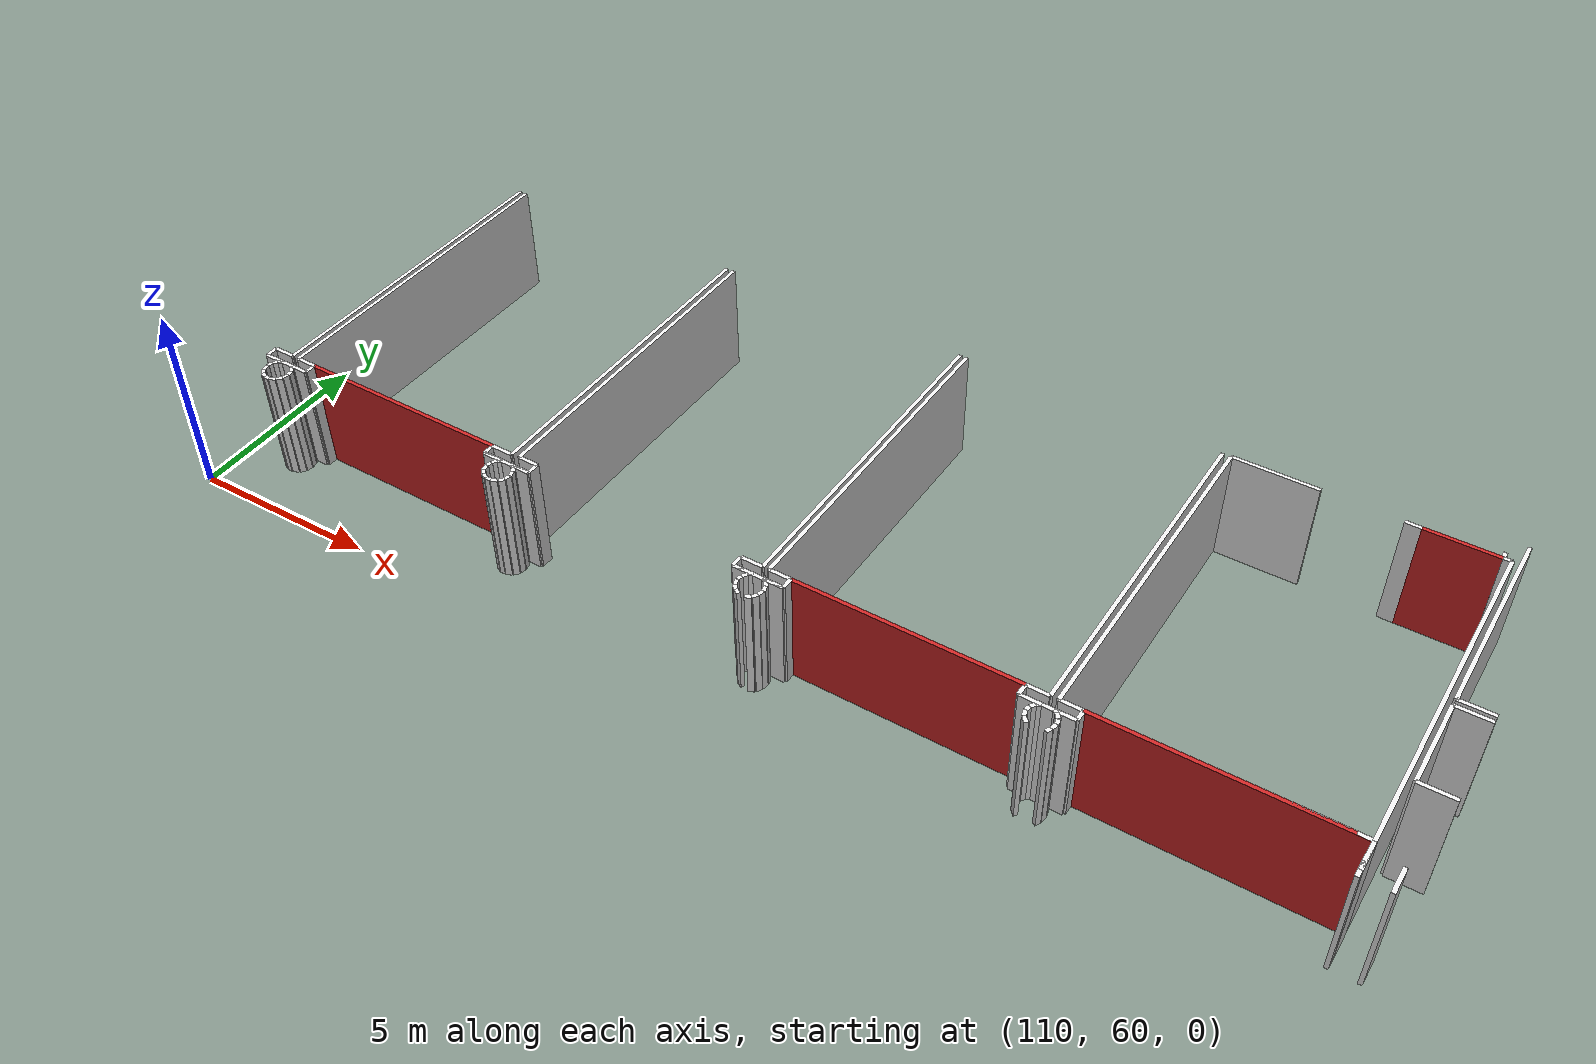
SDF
<sdf version="1.6">
 <world name="default">
  <model name="wall_138.2_70.8">
   <static>true</static>
   <pose>138.2149999999965 70.78000000002794 1.5 0 0 -0.01104927408967263</pose>
   <link name="link">
    <visual name="visual">
     <geometry><box><size>1.810110493862824 0.1 3</size></box></geometry>
     <material>
      <script><uri>file://media/materials/scripts/gazebo.material</uri><name>Gazebo/Red</name></script>
     </material>
    </visual>
   </link>
  </model>
  <model name="wall_115.0_62.2">
   <static>true</static>
   <pose>115.0 62.23999999999069 1.5 0 0 -0.014034166198596688</pose>
   <link name="link">
    <visual name="visual">
     <geometry><box><size>5.700561375812611 0.1 3</size></box></geometry>
     <material>
      <script><uri>file://media/materials/scripts/gazebo.material</uri><name>Gazebo/Red</name></script>
     </material>
    </visual>
   </link>
  </model>
  <model name="wall_129.0_62.0">
   <static>true</static>
   <pose>129.01999999998952 62.049999999813735 1.5 0 0 -0.014034166280132265</pose>
   <link name="link">
    <visual name="visual">
     <geometry><box><size>5.7005613758773475 0.1 3</size></box></geometry>
     <material>
      <script><uri>file://media/materials/scripts/gazebo.material</uri><name>Gazebo/Red</name></script>
     </material>
    </visual>
   </link>
  </model>
  <model name="wall_136.2_62.0">
   <static>true</static>
   <pose>136.19500000000698 61.950000000186265 1.5 0 0 -0.013266220046968015</pose>
   <link name="link">
    <visual name="visual">
     <geometry><box><size>6.030530656612972 0.1 3</size></box></geometry>
     <material>
      <script><uri>file://media/materials/scripts/gazebo.material</uri><name>Gazebo/Red</name></script>
     </material>
    </visual>
   </link>
  </model>
  <model name="wall_139.9_66.0">
   <static>true</static>
   <pose>139.88000000000466 65.99500000011176 1.5 0 0 3.129965270893089</pose>
   <link name="link">
    <visual name="visual">
     <geometry><box><size>0.860058137553213 0.1 3</size></box></geometry>
     <material>
      <script><uri>file://media/materials/scripts/gazebo.material</uri><name>Gazebo/White</name></script>
     </material>
    </visual>
   </link>
  </model>
  <model name="wall_139.4_64.9">
   <static>true</static>
   <pose>139.43499999999767 64.85000000009313 1.5 0 0 -1.583839065438706</pose>
   <link name="link">
    <visual name="visual">
     <geometry><box><size>2.3001956436670468 0.1 3</size></box></geometry>
     <material>
      <script><uri>file://media/materials/scripts/gazebo.material</uri><name>Gazebo/White</name></script>
     </material>
    </visual>
   </link>
  </model>
  <model name="wall_139.9_63.7">
   <static>true</static>
   <pose>139.85499999998137 63.69500000006519 1.5 0 0 -0.011493746993381555</pose>
   <link name="link">
    <visual name="visual">
     <geometry><box><size>0.870057469364375 0.1 3</size></box></geometry>
     <material>
      <script><uri>file://media/materials/scripts/gazebo.material</uri><name>Gazebo/White</name></script>
     </material>
    </visual>
   </link>
  </model>
  <model name="wall_139.1_70.9">
   <static>true</static>
   <pose>139.11999999999534 70.87000000011176 1.5 0 0 1.5707963267948966</pose>
   <link name="link">
    <visual name="visual">
     <geometry><box><size>0.20000000018626451 0.1 3</size></box></geometry>
     <material>
      <script><uri>file://media/materials/scripts/gazebo.material</uri><name>Gazebo/White</name></script>
     </material>
    </visual>
   </link>
  </model>
  <model name="wall_139.5_68.8">
   <static>true</static>
   <pose>139.49500000002445 68.80000000004657 1.5 0 0 -1.5842054847435334</pose>
   <link name="link">
    <visual name="visual">
     <geometry><box><size>5.220469327765468 0.1 3</size></box></geometry>
     <material>
      <script><uri>file://media/materials/scripts/gazebo.material</uri><name>Gazebo/White</name></script>
     </material>
    </visual>
   </link>
  </model>
  <model name="wall_139.9_66.2">
   <static>true</static>
   <pose>139.8850000000093 66.18500000005588 1.5 0 0 -0.011764162887155684</pose>
   <link name="link">
    <visual name="visual">
     <geometry><box><size>0.8500588214682255 0.1 3</size></box></geometry>
     <material>
      <script><uri>file://media/materials/scripts/gazebo.material</uri><name>Gazebo/White</name></script>
     </material>
    </visual>
   </link>
  </model>
  <model name="wall_118.5_66.6">
   <static>true</static>
   <pose>118.47999999998137 66.61999999987893 1.5 0 0 1.557253136818869</pose>
   <link name="link">
    <visual name="visual">
     <geometry><box><size>8.860812603688696 0.1 3</size></box></geometry>
     <material>
      <script><uri>file://media/materials/scripts/gazebo.material</uri><name>Gazebo/White</name></script>
     </material>
    </visual>
   </link>
  </model>
  <model name="wall_111.7_66.7">
   <static>true</static>
   <pose>111.6699999999837 66.71999999997206 1.5 0 0 -1.5843395167709244</pose>
   <link name="link">
    <visual name="visual">
     <geometry><box><size>8.860812603688696 0.1 3</size></box></geometry>
     <material>
      <script><uri>file://media/materials/scripts/gazebo.material</uri><name>Gazebo/White</name></script>
     </material>
    </visual>
   </link>
  </model>
  <model name="wall_111.9_62.3">
   <static>true</static>
   <pose>111.88000000000466 62.28499999991618 1.5 0 0 -0.018516402514992796</pose>
   <link name="link">
    <visual name="visual">
     <geometry><box><size>0.540092584697361 0.1 3</size></box></geometry>
     <material>
      <script><uri>file://media/materials/scripts/gazebo.material</uri><name>Gazebo/White</name></script>
     </material>
    </visual>
   </link>
  </model>
  <model name="wall_118.1_62.2">
   <static>true</static>
   <pose>118.13499999998021 62.19500000006519 1.5 0 0 -0.01754206048187066</pose>
   <link name="link">
    <visual name="visual">
     <geometry><box><size>0.5700877125608004 0.1 3</size></box></geometry>
     <material>
      <script><uri>file://media/materials/scripts/gazebo.material</uri><name>Gazebo/White</name></script>
     </material>
    </visual>
   </link>
  </model>
  <model name="wall_125.5_66.5">
   <static>true</static>
   <pose>125.5 66.53500000014901 1.5 0 0 1.5572684034898048</pose>
   <link name="link">
    <visual name="visual">
     <geometry><box><size>8.870811687888628 0.1 3</size></box></geometry>
     <material>
      <script><uri>file://media/materials/scripts/gazebo.material</uri><name>Gazebo/White</name></script>
     </material>
    </visual>
   </link>
  </model>
  <model name="wall_118.7_66.6">
   <static>true</static>
   <pose>118.69000000000233 66.62999999988824 1.5 0 0 -1.5843701537129677</pose>
   <link name="link">
    <visual name="visual">
     <geometry><box><size>8.840814441971077 0.1 3</size></box></geometry>
     <material>
      <script><uri>file://media/materials/scripts/gazebo.material</uri><name>Gazebo/White</name></script>
     </material>
    </visual>
   </link>
  </model>
  <model name="wall_118.9_62.2">
   <static>true</static>
   <pose>118.89499999998952 62.205000000074506 1.5 0 0 -0.018865685601167047</pose>
   <link name="link">
    <visual name="visual">
     <geometry><box><size>0.5300943311934637 0.1 3</size></box></geometry>
     <material>
      <script><uri>file://media/materials/scripts/gazebo.material</uri><name>Gazebo/White</name></script>
     </material>
    </visual>
   </link>
  </model>
  <model name="wall_125.2_62.1">
   <static>true</static>
   <pose>125.15499999999884 62.10499999998137 1.5 0 0 -0.017542059665172402</pose>
   <link name="link">
    <visual name="visual">
     <geometry><box><size>0.5700877125526321 0.1 3</size></box></geometry>
     <material>
      <script><uri>file://media/materials/scripts/gazebo.material</uri><name>Gazebo/White</name></script>
     </material>
    </visual>
   </link>
  </model>
  <model name="wall_132.5_66.4">
   <static>true</static>
   <pose>132.4899999999907 66.42999999993481 1.5 0 0 1.557253136818869</pose>
   <link name="link">
    <visual name="visual">
     <geometry><box><size>8.860812603688696 0.1 3</size></box></geometry>
     <material>
      <script><uri>file://media/materials/scripts/gazebo.material</uri><name>Gazebo/White</name></script>
     </material>
    </visual>
   </link>
  </model>
  <model name="wall_125.7_66.5">
   <static>true</static>
   <pose>125.67499999998836 66.53500000014901 1.5 0 0 -1.5854514218446472</pose>
   <link name="link">
    <visual name="visual">
     <geometry><box><size>8.87095259833936 0.1 3</size></box></geometry>
     <material>
      <script><uri>file://media/materials/scripts/gazebo.material</uri><name>Gazebo/White</name></script>
     </material>
    </visual>
   </link>
  </model>
  <model name="wall_125.9_62.1">
   <static>true</static>
   <pose>125.88999999998487 62.09499999997206 1.5 0 0 -0.017855245571888664</pose>
   <link name="link">
    <visual name="visual">
     <geometry><box><size>0.5600892785996132 0.1 3</size></box></geometry>
     <material>
      <script><uri>file://media/materials/scripts/gazebo.material</uri><name>Gazebo/White</name></script>
     </material>
    </visual>
   </link>
  </model>
  <model name="wall_132.1_62.0">
   <static>true</static>
   <pose>132.14999999999418 62.00499999988824 1.5 0 0 -0.017855244740615724</pose>
   <link name="link">
    <visual name="visual">
     <geometry><box><size>0.5600892785912992 0.1 3</size></box></geometry>
     <material>
      <script><uri>file://media/materials/scripts/gazebo.material</uri><name>Gazebo/White</name></script>
     </material>
    </visual>
   </link>
  </model>
  <model name="wall_139.0_61.9">
   <static>true</static>
   <pose>139.04000000000815 61.91500000003725 1.5 0 0 3.112189366044838</pose>
   <link name="link">
    <visual name="visual">
     <geometry><box><size>0.34014702705292804 0.1 3</size></box></geometry>
     <material>
      <script><uri>file://media/materials/scripts/gazebo.material</uri><name>Gazebo/White</name></script>
     </material>
    </visual>
   </link>
  </model>
  <model name="wall_136.0_62.0">
   <static>true</static>
   <pose>136.02499999999418 61.955000000074506 1.5 0 0 3.1292909894057774</pose>
   <link name="link">
    <visual name="visual">
     <geometry><box><size>5.690430563680416 0.1 3</size></box></geometry>
     <material>
      <script><uri>file://media/materials/scripts/gazebo.material</uri><name>Gazebo/White</name></script>
     </material>
    </visual>
   </link>
  </model>
  <model name="wall_132.9_62.0">
   <static>true</static>
   <pose>132.89999999999418 61.99500000011176 1.5 0 0 3.1237374088491774</pose>
   <link name="link">
    <visual name="visual">
     <geometry><box><size>0.5600892785912992 0.1 3</size></box></geometry>
     <material>
      <script><uri>file://media/materials/scripts/gazebo.material</uri><name>Gazebo/White</name></script>
     </material>
    </visual>
   </link>
  </model>
  <model name="wall_132.7_66.4">
   <static>true</static>
   <pose>132.69000000000233 66.42999999993481 1.5 0 0 1.5549962873031096</pose>
   <link name="link">
    <visual name="visual">
     <geometry><box><size>8.861106025643384 0.1 3</size></box></geometry>
     <material>
      <script><uri>file://media/materials/scripts/gazebo.material</uri><name>Gazebo/White</name></script>
     </material>
    </visual>
   </link>
  </model>
  <model name="wall_133.9_70.8">
   <static>true</static>
   <pose>133.85500000001048 70.84499999997206 1.5 0 0 -0.013697773279311262</pose>
   <link name="link">
    <visual name="visual">
     <geometry><box><size>2.190205469812799 0.1 3</size></box></geometry>
     <material>
      <script><uri>file://media/materials/scripts/gazebo.material</uri><name>Gazebo/White</name></script>
     </material>
    </visual>
   </link>
  </model>
  <model name="wall_137.1_70.8">
   <static>true</static>
   <pose>137.10999999998603 70.7949999999255 1.5 0 0 -0.02499479305902136</pose>
   <link name="link">
    <visual name="visual">
     <geometry><box><size>0.40012498049254075 0.1 3</size></box></geometry>
     <material>
      <script><uri>file://media/materials/scripts/gazebo.material</uri><name>Gazebo/White</name></script>
     </material>
    </visual>
   </link>
  </model>
  <model name="wall_139.2_70.8">
   <static>true</static>
   <pose>139.22000000000116 70.77000000001863 1.5 0 0 0.0</pose>
   <link name="link">
    <visual name="visual">
     <geometry><box><size>0.20000000001164153 0.1 3</size></box></geometry>
     <material>
      <script><uri>file://media/materials/scripts/gazebo.material</uri><name>Gazebo/White</name></script>
     </material>
    </visual>
   </link>
  </model>
  <model name="wall_139.3_66.3">
   <static>true</static>
   <pose>139.26500000001397 66.34000000008382 1.5 0 0 -1.583211038835171</pose>
   <link name="link">
    <visual name="visual">
     <geometry><box><size>8.860682817801711 0.1 3</size></box></geometry>
     <material>
      <script><uri>file://media/materials/scripts/gazebo.material</uri><name>Gazebo/White</name></script>
     </material>
    </visual>
   </link>
  </model>
  <model name="wall_111.5_66.7">
   <static>true</static>
   <pose>111.47499999997672 66.7249999998603 1.5 0 0 1.5561081176441238</pose>
   <link name="link">
    <visual name="visual">
     <geometry><box><size>8.850954750853134 0.1 3</size></box></geometry>
     <material>
      <script><uri>file://media/materials/scripts/gazebo.material</uri><name>Gazebo/White</name></script>
     </material>
    </visual>
   </link>
  </model>
  <model name="wall_111.1_62.3">
   <static>true</static>
   <pose>111.12999999997555 62.30499999993481 1.5 0 0 -0.017855245571888664</pose>
   <link name="link">
    <visual name="visual">
     <geometry><box><size>0.5600892785996132 0.1 3</size></box></geometry>
     <material>
      <script><uri>file://media/materials/scripts/gazebo.material</uri><name>Gazebo/White</name></script>
     </material>
    </visual>
   </link>
  </model>
  <model name="wall_110.8_62.2">
   <static>true</static>
   <pose>110.84999999997672 62.15500000002794 1.5 0 0 -1.5707963267948966</pose>
   <link name="link">
    <visual name="visual">
     <geometry><box><size>0.31000000005587935 0.1 3</size></box></geometry>
     <material>
      <script><uri>file://media/materials/scripts/gazebo.material</uri><name>Gazebo/White</name></script>
     </material>
    </visual>
   </link>
  </model>
  <model name="wall_111.1_62.0">
   <static>true</static>
   <pose>111.10999999998603 61.99500000011176 1.5 0 0 -0.01922839866933633</pose>
   <link name="link">
    <visual name="visual">
     <geometry><box><size>0.5200961449721592 0.1 3</size></box></geometry>
     <material>
      <script><uri>file://media/materials/scripts/gazebo.material</uri><name>Gazebo/White</name></script>
     </material>
    </visual>
   </link>
  </model>
  <model name="wall_111.3_62.0">
   <static>true</static>
   <pose>111.31500000000233 61.96000000019558 1.5 0 0 -2.642245931464764</pose>
   <link name="link">
    <visual name="visual">
     <geometry><box><size>0.12529964087591056 0.1 3</size></box></geometry>
     <material>
      <script><uri>file://media/materials/scripts/gazebo.material</uri><name>Gazebo/White</name></script>
     </material>
    </visual>
   </link>
  </model>
  <model name="wall_111.2_61.9">
   <static>true</static>
   <pose>111.22000000000116 61.875 1.5 0 0 -2.199592611857395</pose>
   <link name="link">
    <visual name="visual">
     <geometry><box><size>0.13601470536809043 0.1 3</size></box></geometry>
     <material>
      <script><uri>file://media/materials/scripts/gazebo.material</uri><name>Gazebo/White</name></script>
     </material>
    </visual>
   </link>
  </model>
  <model name="wall_111.2_61.8">
   <static>true</static>
   <pose>111.16500000000815 61.75499999988824 1.5 0 0 -1.7975951748160817</pose>
   <link name="link">
    <visual name="visual">
     <geometry><box><size>0.13341664052556057 0.1 3</size></box></geometry>
     <material>
      <script><uri>file://media/materials/scripts/gazebo.material</uri><name>Gazebo/White</name></script>
     </material>
    </visual>
   </link>
  </model>
  <model name="wall_111.2_61.6">
   <static>true</static>
   <pose>111.1700000000128 61.609999999869615 1.5 0 0 -1.3258176640104304</pose>
   <link name="link">
    <visual name="visual">
     <geometry><box><size>0.16492422516418664 0.1 3</size></box></geometry>
     <material>
      <script><uri>file://media/materials/scripts/gazebo.material</uri><name>Gazebo/White</name></script>
     </material>
    </visual>
   </link>
  </model>
  <model name="wall_111.2_61.5">
   <static>true</static>
   <pose>111.23500000001513 61.46499999985099 1.5 0 0 -0.9652516626544161</pose>
   <link name="link">
    <visual name="visual">
     <geometry><box><size>0.15811388293111006 0.1 3</size></box></geometry>
     <material>
      <script><uri>file://media/materials/scripts/gazebo.material</uri><name>Gazebo/White</name></script>
     </material>
    </visual>
   </link>
  </model>
  <model name="wall_111.3_61.4">
   <static>true</static>
   <pose>111.34500000000116 61.36999999987893 1.5 0 0 -0.4324077760816295</pose>
   <link name="link">
    <visual name="visual">
     <geometry><box><size>0.14317821060755806 0.1 3</size></box></geometry>
     <material>
      <script><uri>file://media/materials/scripts/gazebo.material</uri><name>Gazebo/White</name></script>
     </material>
    </visual>
   </link>
  </model>
  <model name="wall_111.5_61.3">
   <static>true</static>
   <pose>111.47999999998137 61.33499999996275 1.5 0 0 -0.07130746318975038</pose>
   <link name="link">
    <visual name="visual">
     <geometry><box><size>0.1403566884741914 0.1 3</size></box></geometry>
     <material>
      <script><uri>file://media/materials/scripts/gazebo.material</uri><name>Gazebo/White</name></script>
     </material>
    </visual>
   </link>
  </model>
  <model name="wall_111.6_61.4">
   <static>true</static>
   <pose>111.63000000000466 61.36499999999069 1.5 0 0 0.41241044064316335</pose>
   <link name="link">
    <visual name="visual">
     <geometry><box><size>0.17464249192840064 0.1 3</size></box></geometry>
     <material>
      <script><uri>file://media/materials/scripts/gazebo.material</uri><name>Gazebo/White</name></script>
     </material>
    </visual>
   </link>
  </model>
  <model name="wall_111.8_61.5">
   <static>true</static>
   <pose>111.76000000000931 61.45999999996275 1.5 0 0 0.8760580511707278</pose>
   <link name="link">
    <visual name="visual">
     <geometry><box><size>0.15620499358908305 0.1 3</size></box></geometry>
     <material>
      <script><uri>file://media/materials/scripts/gazebo.material</uri><name>Gazebo/White</name></script>
     </material>
    </visual>
   </link>
  </model>
  <model name="wall_111.8_61.6">
   <static>true</static>
   <pose>111.8299999999872 61.59499999997206 1.5 0 0 1.310193935023403</pose>
   <link name="link">
    <visual name="visual">
     <geometry><box><size>0.15524174686721334 0.1 3</size></box></geometry>
     <material>
      <script><uri>file://media/materials/scripts/gazebo.material</uri><name>Gazebo/White</name></script>
     </material>
    </visual>
   </link>
  </model>
  <model name="wall_111.8_61.7">
   <static>true</static>
   <pose>111.83499999999185 61.74499999987893 1.5 0 0 1.7681918865701522</pose>
   <link name="link">
    <visual name="visual">
     <geometry><box><size>0.15297058531052382 0.1 3</size></box></geometry>
     <material>
      <script><uri>file://media/materials/scripts/gazebo.material</uri><name>Gazebo/White</name></script>
     </material>
    </visual>
   </link>
  </model>
  <model name="wall_111.8_61.9">
   <static>true</static>
   <pose>111.76999999998952 61.88500000000931 1.5 0 0 2.2264919518895905</pose>
   <link name="link">
    <visual name="visual">
     <geometry><box><size>0.16401219497037284 0.1 3</size></box></geometry>
     <material>
      <script><uri>file://media/materials/scripts/gazebo.material</uri><name>Gazebo/White</name></script>
     </material>
    </visual>
   </link>
  </model>
  <model name="wall_111.7_62.0">
   <static>true</static>
   <pose>111.67999999999302 61.97000000020489 1.5 0 0 2.6779450440069104</pose>
   <link name="link">
    <visual name="visual">
     <geometry><box><size>0.08944271907916658 0.1 3</size></box></geometry>
     <material>
      <script><uri>file://media/materials/scripts/gazebo.material</uri><name>Gazebo/White</name></script>
     </material>
    </visual>
   </link>
  </model>
  <model name="wall_111.9_62.0">
   <static>true</static>
   <pose>111.89000000001397 61.985000000102445 1.5 0 0 -0.019997334457244633</pose>
   <link name="link">
    <visual name="visual">
     <geometry><box><size>0.5000999900068415 0.1 3</size></box></geometry>
     <material>
      <script><uri>file://media/materials/scripts/gazebo.material</uri><name>Gazebo/White</name></script>
     </material>
    </visual>
   </link>
  </model>
  <model name="wall_112.1_62.1">
   <static>true</static>
   <pose>112.14500000001863 62.12999999988824 1.5 0 0 1.5374753308649667</pose>
   <link name="link">
    <visual name="visual">
     <geometry><box><size>0.30016662021022184 0.1 3</size></box></geometry>
     <material>
      <script><uri>file://media/materials/scripts/gazebo.material</uri><name>Gazebo/White</name></script>
     </material>
    </visual>
   </link>
  </model>
  <model name="wall_117.8_62.1">
   <static>true</static>
   <pose>117.84999999997672 62.050000000046566 1.5 0 0 -1.5707963267948966</pose>
   <link name="link">
    <visual name="visual">
     <geometry><box><size>0.3000000002793968 0.1 3</size></box></geometry>
     <material>
      <script><uri>file://media/materials/scripts/gazebo.material</uri><name>Gazebo/White</name></script>
     </material>
    </visual>
   </link>
  </model>
  <model name="wall_118.1_61.9">
   <static>true</static>
   <pose>118.11999999999534 61.89999999990687 1.5 0 0 0.0</pose>
   <link name="link">
    <visual name="visual">
     <geometry><box><size>0.5400000000372529 0.1 3</size></box></geometry>
     <material>
      <script><uri>file://media/materials/scripts/gazebo.material</uri><name>Gazebo/White</name></script>
     </material>
    </visual>
   </link>
  </model>
  <model name="wall_118.3_61.9">
   <static>true</static>
   <pose>118.3300000000163 61.86499999999069 1.5 0 0 -2.6135182061888536</pose>
   <link name="link">
    <visual name="visual">
     <geometry><box><size>0.1389244398060078 0.1 3</size></box></geometry>
     <material>
      <script><uri>file://media/materials/scripts/gazebo.material</uri><name>Gazebo/White</name></script>
     </material>
    </visual>
   </link>
  </model>
  <model name="wall_118.2_61.8">
   <static>true</static>
   <pose>118.23500000001513 61.7750000001397 1.5 0 0 -2.1375255449004795</pose>
   <link name="link">
    <visual name="visual">
     <geometry><box><size>0.13038404799780207 0.1 3</size></box></geometry>
     <material>
      <script><uri>file://media/materials/scripts/gazebo.material</uri><name>Gazebo/White</name></script>
     </material>
    </visual>
   </link>
  </model>
  <model name="wall_118.2_61.7">
   <static>true</static>
   <pose>118.18499999999767 61.65500000002794 1.5 0 0 -1.7975951744563714</pose>
   <link name="link">
    <visual name="visual">
     <geometry><box><size>0.1334166409923854 0.1 3</size></box></geometry>
     <material>
      <script><uri>file://media/materials/scripts/gazebo.material</uri><name>Gazebo/White</name></script>
     </material>
    </visual>
   </link>
  </model>
  <model name="wall_118.2_61.5">
   <static>true</static>
   <pose>118.18499999999767 61.51000000000931 1.5 0 0 -1.3854483762720382</pose>
   <link name="link">
    <visual name="visual">
     <geometry><box><size>0.16278820565491986 0.1 3</size></box></geometry>
     <material>
      <script><uri>file://media/materials/scripts/gazebo.material</uri><name>Gazebo/White</name></script>
     </material>
    </visual>
   </link>
  </model>
  <model name="wall_118.2_61.4">
   <static>true</static>
   <pose>118.25 61.37000000011176 1.5 0 0 -0.8760580511707278</pose>
   <link name="link">
    <visual name="visual">
     <geometry><box><size>0.15620499358908305 0.1 3</size></box></geometry>
     <material>
      <script><uri>file://media/materials/scripts/gazebo.material</uri><name>Gazebo/White</name></script>
     </material>
    </visual>
   </link>
  </model>
  <model name="wall_118.4_61.3">
   <static>true</static>
   <pose>118.36499999999069 61.2750000001397 1.5 0 0 -0.49394136790495224</pose>
   <link name="link">
    <visual name="visual">
     <geometry><box><size>0.14764823052695686 0.1 3</size></box></geometry>
     <material>
      <script><uri>file://media/materials/scripts/gazebo.material</uri><name>Gazebo/White</name></script>
     </material>
    </visual>
   </link>
  </model>
  <model name="wall_118.5_61.2">
   <static>true</static>
   <pose>118.5 61.24000000022352 1.5 0 0 0.0</pose>
   <link name="link">
    <visual name="visual">
     <geometry><box><size>0.14000000001396984 0.1 3</size></box></geometry>
     <material>
      <script><uri>file://media/materials/scripts/gazebo.material</uri><name>Gazebo/White</name></script>
     </material>
    </visual>
   </link>
  </model>
  <model name="wall_118.6_61.3">
   <static>true</static>
   <pose>118.64999999999418 61.27000000001863 1.5 0 0 0.3587706680778179</pose>
   <link name="link">
    <visual name="visual">
     <geometry><box><size>0.1708800747384859 0.1 3</size></box></geometry>
     <material>
      <script><uri>file://media/materials/scripts/gazebo.material</uri><name>Gazebo/White</name></script>
     </material>
    </visual>
   </link>
  </model>
  <model name="wall_118.8_61.4">
   <static>true</static>
   <pose>118.77999999999884 61.359999999869615 1.5 0 0 0.8760580508844606</pose>
   <link name="link">
    <visual name="visual">
     <geometry><box><size>0.15620499362634668 0.1 3</size></box></geometry>
     <material>
      <script><uri>file://media/materials/scripts/gazebo.material</uri><name>Gazebo/White</name></script>
     </material>
    </visual>
   </link>
  </model>
  <model name="wall_118.8_61.5">
   <static>true</static>
   <pose>118.84500000000116 61.49499999987893 1.5 0 0 1.373400767019641</pose>
   <link name="link">
    <visual name="visual">
     <geometry><box><size>0.15297058531052382 0.1 3</size></box></geometry>
     <material>
      <script><uri>file://media/materials/scripts/gazebo.material</uri><name>Gazebo/White</name></script>
     </material>
    </visual>
   </link>
  </model>
  <model name="wall_118.8_61.6">
   <static>true</static>
   <pose>118.84500000000116 61.64500000001863 1.5 0 0 1.7681918859731505</pose>
   <link name="link">
    <visual name="visual">
     <geometry><box><size>0.15297058576714226 0.1 3</size></box></geometry>
     <material>
      <script><uri>file://media/materials/scripts/gazebo.material</uri><name>Gazebo/White</name></script>
     </material>
    </visual>
   </link>
  </model>
  <model name="wall_118.8_61.8">
   <static>true</static>
   <pose>118.78500000000349 61.78500000014901 1.5 0 0 2.176340990935377</pose>
   <link name="link">
    <visual name="visual">
     <geometry><box><size>0.15811388293111006 0.1 3</size></box></geometry>
     <material>
      <script><uri>file://media/materials/scripts/gazebo.material</uri><name>Gazebo/White</name></script>
     </material>
    </visual>
   </link>
  </model>
  <model name="wall_118.7_61.9">
   <static>true</static>
   <pose>118.69999999998254 61.87000000011176 1.5 0 0 2.6779450442979487</pose>
   <link name="link">
    <visual name="visual">
     <geometry><box><size>0.0894427191312291 0.1 3</size></box></geometry>
     <material>
      <script><uri>file://media/materials/scripts/gazebo.material</uri><name>Gazebo/White</name></script>
     </material>
    </visual>
   </link>
  </model>
  <model name="wall_118.9_61.9">
   <static>true</static>
   <pose>118.90499999999884 61.88500000000931 1.5 0 0 -0.020405331178467944</pose>
   <link name="link">
    <visual name="visual">
     <geometry><box><size>0.4901020302475388 0.1 3</size></box></geometry>
     <material>
      <script><uri>file://media/materials/scripts/gazebo.material</uri><name>Gazebo/White</name></script>
     </material>
    </visual>
   </link>
  </model>
  <model name="wall_119.2_62.0">
   <static>true</static>
   <pose>119.15499999999884 62.04000000003725 1.5 0 0 1.5395564935463497</pose>
   <link name="link">
    <visual name="visual">
     <geometry><box><size>0.320156212167993 0.1 3</size></box></geometry>
     <material>
      <script><uri>file://media/materials/scripts/gazebo.material</uri><name>Gazebo/White</name></script>
     </material>
    </visual>
   </link>
  </model>
  <model name="wall_124.9_62.0">
   <static>true</static>
   <pose>124.86499999999069 61.954999999841675 1.5 0 0 -1.6030432092543534</pose>
   <link name="link">
    <visual name="visual">
     <geometry><box><size>0.310161248441567 0.1 3</size></box></geometry>
     <material>
      <script><uri>file://media/materials/scripts/gazebo.material</uri><name>Gazebo/White</name></script>
     </material>
    </visual>
   </link>
  </model>
  <model name="wall_125.1_61.8">
   <static>true</static>
   <pose>125.13000000000466 61.799999999813735 1.5 0 0 0.0</pose>
   <link name="link">
    <visual name="visual">
     <geometry><box><size>0.5400000000372529 0.1 3</size></box></geometry>
     <material>
      <script><uri>file://media/materials/scripts/gazebo.material</uri><name>Gazebo/White</name></script>
     </material>
    </visual>
   </link>
  </model>
  <model name="wall_125.3_61.8">
   <static>true</static>
   <pose>125.34500000000116 61.764999999897555 1.5 0 0 -2.5748634373331596</pose>
   <link name="link">
    <visual name="visual">
     <geometry><box><size>0.13038404805137394 0.1 3</size></box></geometry>
     <material>
      <script><uri>file://media/materials/scripts/gazebo.material</uri><name>Gazebo/White</name></script>
     </material>
    </visual>
   </link>
  </model>
  <model name="wall_125.2_61.7">
   <static>true</static>
   <pose>125.25 61.675000000046566 1.5 0 0 -2.1995926135249655</pose>
   <link name="link">
    <visual name="visual">
     <geometry><box><size>0.13601470495725726 0.1 3</size></box></geometry>
     <material>
      <script><uri>file://media/materials/scripts/gazebo.material</uri><name>Gazebo/White</name></script>
     </material>
    </visual>
   </link>
  </model>
  <model name="wall_125.2_61.6">
   <static>true</static>
   <pose>125.19500000000698 61.55500000016764 1.5 0 0 -1.7975951752411936</pose>
   <link name="link">
    <visual name="visual">
     <geometry><box><size>0.13341664053864913 0.1 3</size></box></geometry>
     <material>
      <script><uri>file://media/materials/scripts/gazebo.material</uri><name>Gazebo/White</name></script>
     </material>
    </visual>
   </link>
  </model>
  <model name="wall_125.2_61.4">
   <static>true</static>
   <pose>125.19999999998254 61.41000000014901 1.5 0 0 -1.3258176640104304</pose>
   <link name="link">
    <visual name="visual">
     <geometry><box><size>0.16492422516418664 0.1 3</size></box></geometry>
     <material>
      <script><uri>file://media/materials/scripts/gazebo.material</uri><name>Gazebo/White</name></script>
     </material>
    </visual>
   </link>
  </model>
  <model name="wall_125.3_61.3">
   <static>true</static>
   <pose>125.26999999998952 61.27000000001863 1.5 0 0 -0.8760580508844606</pose>
   <link name="link">
    <visual name="visual">
     <geometry><box><size>0.15620499362634668 0.1 3</size></box></geometry>
     <material>
      <script><uri>file://media/materials/scripts/gazebo.material</uri><name>Gazebo/White</name></script>
     </material>
    </visual>
   </link>
  </model>
  <model name="wall_125.4_61.2">
   <static>true</static>
   <pose>125.38000000000466 61.17999999993481 1.5 0 0 -0.4636476093888572</pose>
   <link name="link">
    <visual name="visual">
     <geometry><box><size>0.1341640786708124 0.1 3</size></box></geometry>
     <material>
      <script><uri>file://media/materials/scripts/gazebo.material</uri><name>Gazebo/White</name></script>
     </material>
    </visual>
   </link>
  </model>
  <model name="wall_125.7_61.2">
   <static>true</static>
   <pose>125.66500000000815 61.170000000158325 1.5 0 0 0.380506377513797</pose>
   <link name="link">
    <visual name="visual">
     <geometry><box><size>0.16155494420236152 0.1 3</size></box></geometry>
     <material>
      <script><uri>file://media/materials/scripts/gazebo.material</uri><name>Gazebo/White</name></script>
     </material>
    </visual>
   </link>
  </model>
  <model name="wall_125.8_61.3">
   <static>true</static>
   <pose>125.77999999999884 61.265000000130385 1.5 0 0 1.019141343791695</pose>
   <link name="link">
    <visual name="visual">
     <geometry><box><size>0.15264337513809906 0.1 3</size></box></geometry>
     <material>
      <script><uri>file://media/materials/scripts/gazebo.material</uri><name>Gazebo/White</name></script>
     </material>
    </visual>
   </link>
  </model>
  <model name="wall_125.8_61.4">
   <static>true</static>
   <pose>125.83999999999651 61.40500000002794 1.5 0 0 1.310193935023403</pose>
   <link name="link">
    <visual name="visual">
     <geometry><box><size>0.15524174686721334 0.1 3</size></box></geometry>
     <material>
      <script><uri>file://media/materials/scripts/gazebo.material</uri><name>Gazebo/White</name></script>
     </material>
    </visual>
   </link>
  </model>
  <model name="wall_125.8_61.6">
   <static>true</static>
   <pose>125.83999999999651 61.55499999993481 1.5 0 0 1.8313987185663902</pose>
   <link name="link">
    <visual name="visual">
     <geometry><box><size>0.15524174686721334 0.1 3</size></box></geometry>
     <material>
      <script><uri>file://media/materials/scripts/gazebo.material</uri><name>Gazebo/White</name></script>
     </material>
    </visual>
   </link>
  </model>
  <model name="wall_125.8_61.7">
   <static>true</static>
   <pose>125.77499999999418 61.69499999983236 1.5 0 0 2.176340990935377</pose>
   <link name="link">
    <visual name="visual">
     <geometry><box><size>0.15811388293111006 0.1 3</size></box></geometry>
     <material>
      <script><uri>file://media/materials/scripts/gazebo.material</uri><name>Gazebo/White</name></script>
     </material>
    </visual>
   </link>
  </model>
  <model name="wall_125.7_61.8">
   <static>true</static>
   <pose>125.69000000000233 61.77499999990687 1.5 0 0 2.782821980289233</pose>
   <link name="link">
    <visual name="visual">
     <geometry><box><size>0.08544003750549678 0.1 3</size></box></geometry>
     <material>
      <script><uri>file://media/materials/scripts/gazebo.material</uri><name>Gazebo/White</name></script>
     </material>
    </visual>
   </link>
  </model>
  <model name="wall_125.9_61.8">
   <static>true</static>
   <pose>125.91000000000349 61.79000000003725 1.5 0 0 0.0</pose>
   <link name="link">
    <visual name="visual">
     <geometry><box><size>0.5199999999604188 0.1 3</size></box></geometry>
     <material>
      <script><uri>file://media/materials/scripts/gazebo.material</uri><name>Gazebo/White</name></script>
     </material>
    </visual>
   </link>
  </model>
  <model name="wall_126.2_61.9">
   <static>true</static>
   <pose>126.1699999999837 61.93999999994412 1.5 0 0 1.5707963267948966</pose>
   <link name="link">
    <visual name="visual">
     <geometry><box><size>0.2999999998137355 0.1 3</size></box></geometry>
     <material>
      <script><uri>file://media/materials/scripts/gazebo.material</uri><name>Gazebo/White</name></script>
     </material>
    </visual>
   </link>
  </model>
  <model name="wall_131.9_61.9">
   <static>true</static>
   <pose>131.8649999999907 61.859999999869615 1.5 0 0 -1.6041173227248264</pose>
   <link name="link">
    <visual name="visual">
     <geometry><box><size>0.30016662021022184 0.1 3</size></box></geometry>
     <material>
      <script><uri>file://media/materials/scripts/gazebo.material</uri><name>Gazebo/White</name></script>
     </material>
    </visual>
   </link>
  </model>
  <model name="wall_132.1_61.7">
   <static>true</static>
   <pose>132.11999999999534 61.705000000074506 1.5 0 0 -0.01922839866933633</pose>
   <link name="link">
    <visual name="visual">
     <geometry><box><size>0.5200961449721592 0.1 3</size></box></geometry>
     <material>
      <script><uri>file://media/materials/scripts/gazebo.material</uri><name>Gazebo/White</name></script>
     </material>
    </visual>
   </link>
  </model>
  <model name="wall_132.3_61.7">
   <static>true</static>
   <pose>132.3300000000163 61.670000000158325 1.5 0 0 -2.601173152805612</pose>
   <link name="link">
    <visual name="visual">
     <geometry><box><size>0.11661903790569063 0.1 3</size></box></geometry>
     <material>
      <script><uri>file://media/materials/scripts/gazebo.material</uri><name>Gazebo/White</name></script>
     </material>
    </visual>
   </link>
  </model>
  <model name="wall_132.2_61.6">
   <static>true</static>
   <pose>132.2400000000198 61.58499999996275 1.5 0 0 -2.199592611857395</pose>
   <link name="link">
    <visual name="visual">
     <geometry><box><size>0.13601470536809043 0.1 3</size></box></geometry>
     <material>
      <script><uri>file://media/materials/scripts/gazebo.material</uri><name>Gazebo/White</name></script>
     </material>
    </visual>
   </link>
  </model>
  <model name="wall_132.2_61.5">
   <static>true</static>
   <pose>132.18499999999767 61.46499999985099 1.5 0 0 -1.7975951752411936</pose>
   <link name="link">
    <visual name="visual">
     <geometry><box><size>0.13341664053864913 0.1 3</size></box></geometry>
     <material>
      <script><uri>file://media/materials/scripts/gazebo.material</uri><name>Gazebo/White</name></script>
     </material>
    </visual>
   </link>
  </model>
  <model name="wall_132.2_61.3">
   <static>true</static>
   <pose>132.19000000000233 61.32000000006519 1.5 0 0 -1.3258176629832366</pose>
   <link name="link">
    <visual name="visual">
     <geometry><box><size>0.16492422472654628 0.1 3</size></box></geometry>
     <material>
      <script><uri>file://media/materials/scripts/gazebo.material</uri><name>Gazebo/White</name></script>
     </material>
    </visual>
   </link>
  </model>
  <model name="wall_132.3_61.2">
   <static>true</static>
   <pose>132.27000000001863 61.175000000046566 1.5 0 0 -0.8253768518968939</pose>
   <link name="link">
    <visual name="visual">
     <geometry><box><size>0.17691806038643168 0.1 3</size></box></geometry>
     <material>
      <script><uri>file://media/materials/scripts/gazebo.material</uri><name>Gazebo/White</name></script>
     </material>
    </visual>
   </link>
  </model>
  <model name="wall_132.8_61.2">
   <static>true</static>
   <pose>132.7950000000128 61.169999999925494 1.5 0 0 1.04272187873045</pose>
   <link name="link">
    <visual name="visual">
     <geometry><box><size>0.13892443999455237 0.1 3</size></box></geometry>
     <material>
      <script><uri>file://media/materials/scripts/gazebo.material</uri><name>Gazebo/White</name></script>
     </material>
    </visual>
   </link>
  </model>
  <model name="wall_132.9_61.3">
   <static>true</static>
   <pose>132.85000000000582 61.30499999993481 1.5 0 0 1.310193935023403</pose>
   <link name="link">
    <visual name="visual">
     <geometry><box><size>0.15524174686721334 0.1 3</size></box></geometry>
     <material>
      <script><uri>file://media/materials/scripts/gazebo.material</uri><name>Gazebo/White</name></script>
     </material>
    </visual>
   </link>
  </model>
  <model name="wall_132.9_61.5">
   <static>true</static>
   <pose>132.85500000001048 61.454999999841675 1.5 0 0 1.7681918865701522</pose>
   <link name="link">
    <visual name="visual">
     <geometry><box><size>0.15297058531052382 0.1 3</size></box></geometry>
     <material>
      <script><uri>file://media/materials/scripts/gazebo.material</uri><name>Gazebo/White</name></script>
     </material>
    </visual>
   </link>
  </model>
  <model name="wall_132.8_61.6">
   <static>true</static>
   <pose>132.79000000000815 61.59499999997206 1.5 0 0 2.2264919518895905</pose>
   <link name="link">
    <visual name="visual">
     <geometry><box><size>0.16401219497037284 0.1 3</size></box></geometry>
     <material>
      <script><uri>file://media/materials/scripts/gazebo.material</uri><name>Gazebo/White</name></script>
     </material>
    </visual>
   </link>
  </model>
  <model name="wall_132.7_61.7">
   <static>true</static>
   <pose>132.69999999998254 61.68000000016764 1.5 0 0 2.6779450442979487</pose>
   <link name="link">
    <visual name="visual">
     <geometry><box><size>0.0894427191312291 0.1 3</size></box></geometry>
     <material>
      <script><uri>file://media/materials/scripts/gazebo.material</uri><name>Gazebo/White</name></script>
     </material>
    </visual>
   </link>
  </model>
  <model name="wall_132.9_61.7">
   <static>true</static>
   <pose>132.91499999997905 61.69500000006519 1.5 0 0 -0.019605331331456193</pose>
   <link name="link">
    <visual name="visual">
     <geometry><box><size>0.5100980298083324 0.1 3</size></box></geometry>
     <material>
      <script><uri>file://media/materials/scripts/gazebo.material</uri><name>Gazebo/White</name></script>
     </material>
    </visual>
   </link>
  </model>
  <model name="wall_133.2_61.8">
   <static>true</static>
   <pose>133.17499999998836 61.84000000008382 1.5 0 0 1.5374753309166493</pose>
   <link name="link">
    <visual name="visual">
     <geometry><box><size>0.30016662067562466 0.1 3</size></box></geometry>
     <material>
      <script><uri>file://media/materials/scripts/gazebo.material</uri><name>Gazebo/White</name></script>
     </material>
    </visual>
   </link>
  </model>
  <model name="wall_139.2_61.5">
   <static>true</static>
   <pose>139.2050000000163 61.5250000001397 1.5 0 0 -1.5837826097268481</pose>
   <link name="link">
    <visual name="visual">
     <geometry><box><size>0.770064932345884 0.1 3</size></box></geometry>
     <material>
      <script><uri>file://media/materials/scripts/gazebo.material</uri><name>Gazebo/White</name></script>
     </material>
    </visual>
   </link>
  </model>
  <model name="wall_139.9_61.3">
   <static>true</static>
   <pose>139.8850000000093 61.28499999991618 1.5 0 0 1.5563045877147286</pose>
   <link name="link">
    <visual name="visual">
     <geometry><box><size>0.6900724599077062 0.1 3</size></box></geometry>
     <material>
      <script><uri>file://media/materials/scripts/gazebo.material</uri><name>Gazebo/White</name></script>
     </material>
    </visual>
   </link>
  </model>
  <model name="wall_111.5_62.0">
   <static>true</static>
   <pose>111.49499999999534 61.98999999999069 1.5 0 0 -0.015502633939004449</pose>
   <link name="link">
    <visual name="visual">
     <geometry><box><size>1.2901550294816735 0.1 3</size></box></geometry>
     <material>
      <script><uri>file://media/materials/scripts/gazebo.material</uri><name>Gazebo/White</name></script>
     </material>
    </visual>
   </link>
  </model>
  <model name="wall_118.5_61.9">
   <static>true</static>
   <pose>118.5 61.889999999897555 1.5 0 0 -0.015383401794368852</pose>
   <link name="link">
    <visual name="visual">
     <geometry><box><size>1.3001538370984478 0.1 3</size></box></geometry>
     <material>
      <script><uri>file://media/materials/scripts/gazebo.material</uri><name>Gazebo/White</name></script>
     </material>
    </visual>
   </link>
  </model>
  <model name="wall_125.5_61.8">
   <static>true</static>
   <pose>125.51499999998487 61.794999999925494 1.5 0 0 -0.007633439346892596</pose>
   <link name="link">
    <visual name="visual">
     <geometry><box><size>1.3100381673788857 0.1 3</size></box></geometry>
     <material>
      <script><uri>file://media/materials/scripts/gazebo.material</uri><name>Gazebo/White</name></script>
     </material>
    </visual>
   </link>
  </model>
  <model name="wall_132.5_61.7">
   <static>true</static>
   <pose>132.51499999998487 61.699999999953434 1.5 0 0 -0.015265989561022346</pose>
   <link name="link">
    <visual name="visual">
     <geometry><box><size>1.3101526628582811 0.1 3</size></box></geometry>
     <material>
      <script><uri>file://media/materials/scripts/gazebo.material</uri><name>Gazebo/White</name></script>
     </material>
    </visual>
   </link>
  </model>
  <model name="wall_139.2_61.4">
   <static>true</static>
   <pose>139.20000000001164 61.43000000016764 1.5 0 0 -1.5916266468513158</pose>
   <link name="link">
    <visual name="visual">
     <geometry><box><size>0.9602083106957674 0.1 3</size></box></geometry>
     <material>
      <script><uri>file://media/materials/scripts/gazebo.material</uri><name>Gazebo/White</name></script>
     </material>
    </visual>
   </link>
  </model>
 </world>
</sdf>
